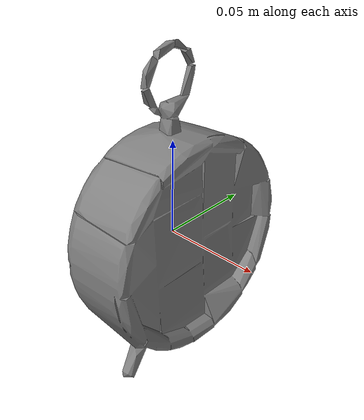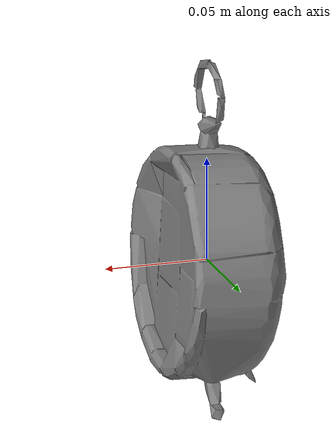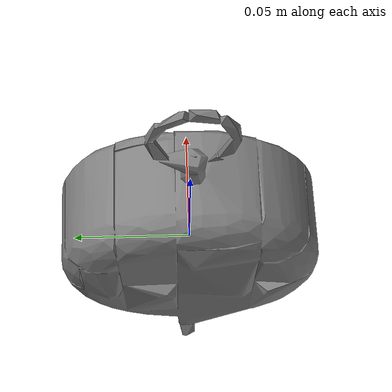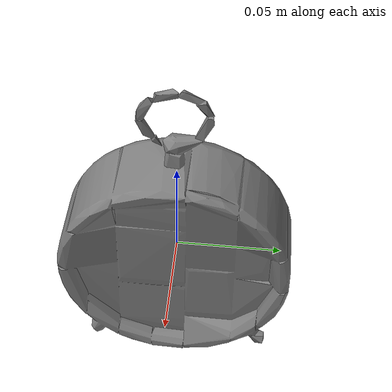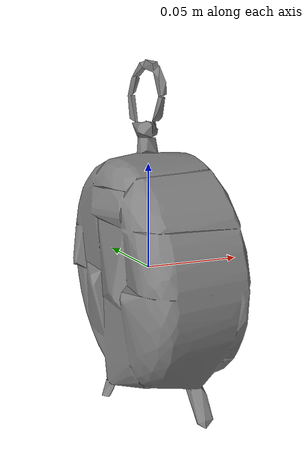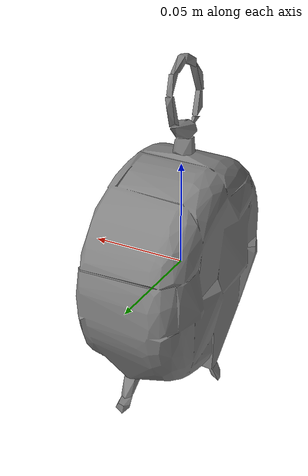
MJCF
<mujoco model="clock_Crosley_Alarm_Clock_Vintage_Metal_M">
  <default>
    <default class="visual">
      <geom group="2" type="mesh" contype="0" conaffinity="0" />
    </default>
    <default class="collision">
      <geom group="3" type="mesh" />
    </default>
  </default>
  <asset>
    <mesh file="clock_Crosley_Alarm_Clock_Vintage_Metal_M.stl" />
    <mesh file="clock_Crosley_Alarm_Clock_Vintage_Metal_M_collision_0.stl" />
    <mesh file="clock_Crosley_Alarm_Clock_Vintage_Metal_M_collision_1.stl" />
    <mesh file="clock_Crosley_Alarm_Clock_Vintage_Metal_M_collision_2.stl" />
    <mesh file="clock_Crosley_Alarm_Clock_Vintage_Metal_M_collision_3.stl" />
    <mesh file="clock_Crosley_Alarm_Clock_Vintage_Metal_M_collision_4.stl" />
    <mesh file="clock_Crosley_Alarm_Clock_Vintage_Metal_M_collision_5.stl" />
    <mesh file="clock_Crosley_Alarm_Clock_Vintage_Metal_M_collision_6.stl" />
    <mesh file="clock_Crosley_Alarm_Clock_Vintage_Metal_M_collision_7.stl" />
    <mesh file="clock_Crosley_Alarm_Clock_Vintage_Metal_M_collision_8.stl" />
    <mesh file="clock_Crosley_Alarm_Clock_Vintage_Metal_M_collision_9.stl" />
    <mesh file="clock_Crosley_Alarm_Clock_Vintage_Metal_M_collision_10.stl" />
    <mesh file="clock_Crosley_Alarm_Clock_Vintage_Metal_M_collision_11.stl" />
    <mesh file="clock_Crosley_Alarm_Clock_Vintage_Metal_M_collision_12.stl" />
    <mesh file="clock_Crosley_Alarm_Clock_Vintage_Metal_M_collision_13.stl" />
    <mesh file="clock_Crosley_Alarm_Clock_Vintage_Metal_M_collision_14.stl" />
    <mesh file="clock_Crosley_Alarm_Clock_Vintage_Metal_M_collision_15.stl" />
  </asset>
  <worldbody>
    <body name="clock_Crosley_Alarm_Clock_Vintage_Metal_M">
      <geom mesh="clock_Crosley_Alarm_Clock_Vintage_Metal_M" class="visual" />
      <geom mesh="clock_Crosley_Alarm_Clock_Vintage_Metal_M_collision_0" class="collision" />
      <geom mesh="clock_Crosley_Alarm_Clock_Vintage_Metal_M_collision_1" class="collision" />
      <geom mesh="clock_Crosley_Alarm_Clock_Vintage_Metal_M_collision_2" class="collision" />
      <geom mesh="clock_Crosley_Alarm_Clock_Vintage_Metal_M_collision_3" class="collision" />
      <geom mesh="clock_Crosley_Alarm_Clock_Vintage_Metal_M_collision_4" class="collision" />
      <geom mesh="clock_Crosley_Alarm_Clock_Vintage_Metal_M_collision_5" class="collision" />
      <geom mesh="clock_Crosley_Alarm_Clock_Vintage_Metal_M_collision_6" class="collision" />
      <geom mesh="clock_Crosley_Alarm_Clock_Vintage_Metal_M_collision_7" class="collision" />
      <geom mesh="clock_Crosley_Alarm_Clock_Vintage_Metal_M_collision_8" class="collision" />
      <geom mesh="clock_Crosley_Alarm_Clock_Vintage_Metal_M_collision_9" class="collision" />
      <geom mesh="clock_Crosley_Alarm_Clock_Vintage_Metal_M_collision_10" class="collision" />
      <geom mesh="clock_Crosley_Alarm_Clock_Vintage_Metal_M_collision_11" class="collision" />
      <geom mesh="clock_Crosley_Alarm_Clock_Vintage_Metal_M_collision_12" class="collision" />
      <geom mesh="clock_Crosley_Alarm_Clock_Vintage_Metal_M_collision_13" class="collision" />
      <geom mesh="clock_Crosley_Alarm_Clock_Vintage_Metal_M_collision_14" class="collision" />
      <geom mesh="clock_Crosley_Alarm_Clock_Vintage_Metal_M_collision_15" class="collision" />
    </body>
  </worldbody>
</mujoco>
